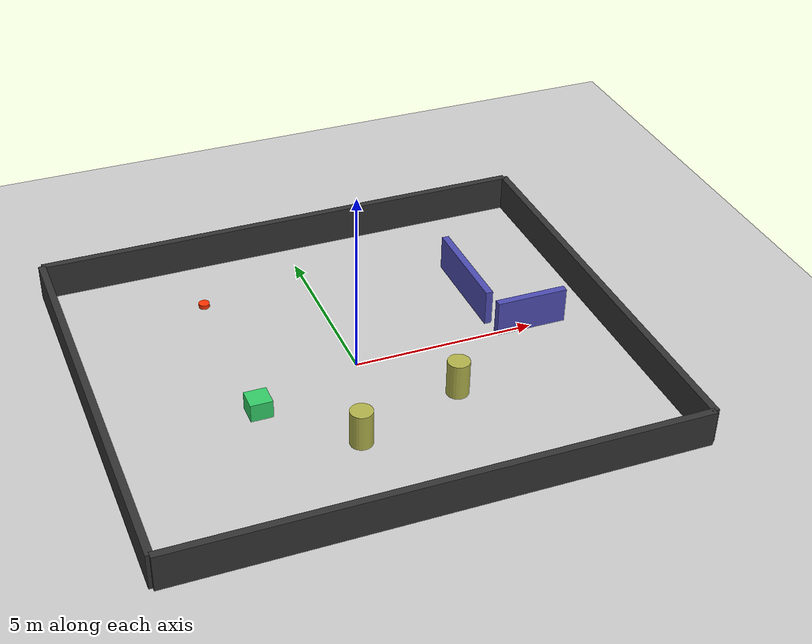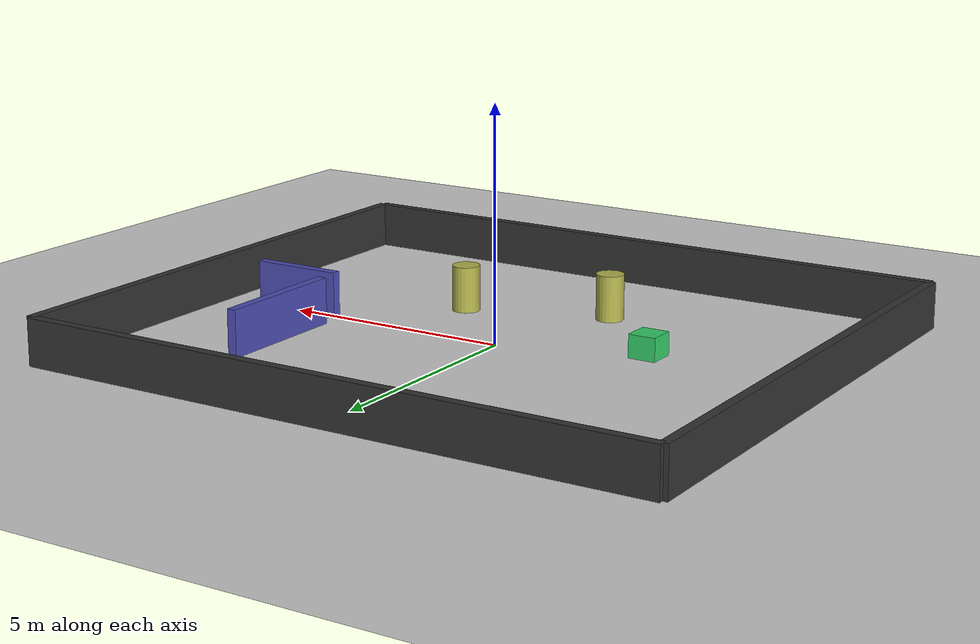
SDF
<?xml version="1.0"?>
<sdf version="1.6">
  <world name="complex_fire_world">

    <!-- Physics -->
    <physics name="default_physics" default="0" type="ode">
      <max_step_size>0.001</max_step_size>
      <real_time_factor>1</real_time_factor>
      <real_time_update_rate>1000</real_time_update_rate>
    </physics>

    <!-- Scene -->
    <scene>
      <ambient>0.4 0.4 0.4 1</ambient>
      <background>0.7 0.7 0.7 1</background>
      <shadows>1</shadows>
    </scene>

    <!-- Sun -->
    <include>
      <uri>model://sun</uri>
    </include>

    <!-- Ground plane -->
    <include>
      <uri>model://ground_plane</uri>
    </include>

    <!-- Fire 2 - Behind obstacles -->
    <model name="fire2">
      <pose>-3 4 0.0 0 0 0</pose>
      <static>true</static>
      <link name="link">
        <visual name="visual">
          <geometry>
            <cylinder>
              <radius>0.15</radius>
              <length>0.2</length>
            </cylinder>
          </geometry>
          <material>
            <ambient>1 0.2 0 1</ambient>
            <diffuse>1 0.2 0 1</diffuse>
            <emissive>1 0.2 0 1</emissive>
          </material>
        </visual>
      </link>
    </model>

    <!-- Pillars -->
    <model name="pillar1">
      <pose>2 -2 0.5 0 0 0</pose>
      <static>true</static>
      <link name="link">
        <collision name="collision">
          <geometry>
            <cylinder>
              <radius>0.3</radius>
              <length>1</length>
            </cylinder>
          </geometry>
        </collision>
        <visual name="visual">
          <geometry>
            <cylinder>
              <radius>0.3</radius>
              <length>1</length>
            </cylinder>
          </geometry>
          <material>
            <ambient>0.7 0.7 0.3 1</ambient>
            <diffuse>0.7 0.7 0.3 1</diffuse>
          </material>
        </visual>
      </link>
    </model>

    <model name="pillar2">
      <pose>-1 -3 0.5 0 0 0</pose>
      <static>true</static>
      <link name="link">
        <collision name="collision">
          <geometry>
            <cylinder>
              <radius>0.3</radius>
              <length>1</length>
            </cylinder>
          </geometry>
        </collision>
        <visual name="visual">
          <geometry>
            <cylinder>
              <radius>0.3</radius>
              <length>1</length>
            </cylinder>
          </geometry>
          <material>
            <ambient>0.7 0.7 0.3 1</ambient>
            <diffuse>0.7 0.7 0.3 1</diffuse>
          </material>
        </visual>
      </link>
    </model>

    <!-- Maze-like structure -->
    <model name="maze_wall1">
      <pose>4 2 0.5 0 0 0</pose>
      <static>true</static>
      <link name="link">
        <collision name="collision">
          <geometry>
            <box>
              <size>0.2 3 1</size>
            </box>
          </geometry>
        </collision>
        <visual name="visual">
          <geometry>
            <box>
              <size>0.2 3 1</size>
            </box>
          </geometry>
          <material>
            <ambient>0.3 0.3 0.7 1</ambient>
            <diffuse>0.3 0.3 0.7 1</diffuse>
          </material>
        </visual>
      </link>
    </model>

    <model name="maze_wall2">
      <pose>5 0 0.5 0 0 1.57</pose>
      <static>true</static>
      <link name="link">
        <collision name="collision">
          <geometry>
            <box>
              <size>0.2 2 1</size>
            </box>
          </geometry>
        </collision>
        <visual name="visual">
          <geometry>
            <box>
              <size>0.2 2 1</size>
            </box>
          </geometry>
          <material>
            <ambient>0.3 0.3 0.7 1</ambient>
            <diffuse>0.3 0.3 0.7 1</diffuse>
          </material>
        </visual>
      </link>
    </model>

    <model name="box2">
      <pose>-3 -1 0.25 0 0 0</pose>
      <static>true</static>
      <link name="link">
        <collision name="collision">
          <geometry>
            <box>
              <size>0.6 0.6 0.5</size>
            </box>
          </geometry>
        </collision>
        <visual name="visual">
          <geometry>
            <box>
              <size>0.6 0.6 0.5</size>
            </box>
          </geometry>
          <material>
            <ambient>0.2 0.8 0.4 1</ambient>
            <diffuse>0.2 0.8 0.4 1</diffuse>
          </material>
        </visual>
      </link>
    </model>

    <!-- Boundary walls to keep robot in area -->
    <model name="boundary_north">
      <pose>0 6 0.5 0 0 0</pose>
      <static>true</static>
      <link name="link">
        <collision name="collision">
          <geometry>
            <box>
              <size>14 0.2 1</size>
            </box>
          </geometry>
        </collision>
        <visual name="visual">
          <geometry>
            <box>
              <size>14 0.2 1</size>
            </box>
          </geometry>
          <material>
            <ambient>0.2 0.2 0.2 1</ambient>
          </material>
        </visual>
      </link>
    </model>

    <model name="boundary_south">
      <pose>0 -6 0.5 0 0 0</pose>
      <static>true</static>
      <link name="link">
        <collision name="collision">
          <geometry>
            <box>
              <size>14 0.2 1</size>
            </box>
          </geometry>
        </collision>
        <visual name="visual">
          <geometry>
            <box>
              <size>14 0.2 1</size>
            </box>
          </geometry>
          <material>
            <ambient>0.2 0.2 0.2 1</ambient>
          </material>
        </visual>
      </link>
    </model>

    <model name="boundary_east">
      <pose>7 0 0.5 0 0 0</pose>
      <static>true</static>
      <link name="link">
        <collision name="collision">
          <geometry>
            <box>
              <size>0.2 12 1</size>
            </box>
          </geometry>
        </collision>
        <visual name="visual">
          <geometry>
            <box>
              <size>0.2 12 1</size>
            </box>
          </geometry>
          <material>
            <ambient>0.2 0.2 0.2 1</ambient>
          </material>
        </visual>
      </link>
    </model>

    <model name="boundary_west">
      <pose>-7 0 0.5 0 0 0</pose>
      <static>true</static>
      <link name="link">
        <collision name="collision">
          <geometry>
            <box>
              <size>0.2 12 1</size>
            </box>
          </geometry>
        </collision>
        <visual name="visual">
          <geometry>
            <box>
              <size>0.2 12 1</size>
            </box>
          </geometry>
          <material>
            <ambient>0.2 0.2 0.2 1</ambient>
          </material>
        </visual>
      </link>
    </model>

  </world>
</sdf>
